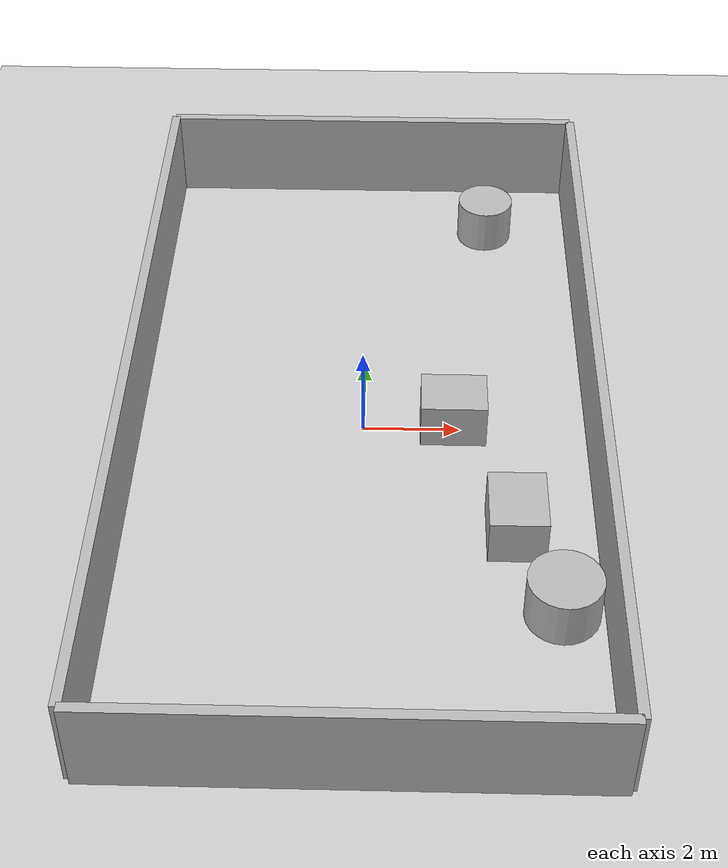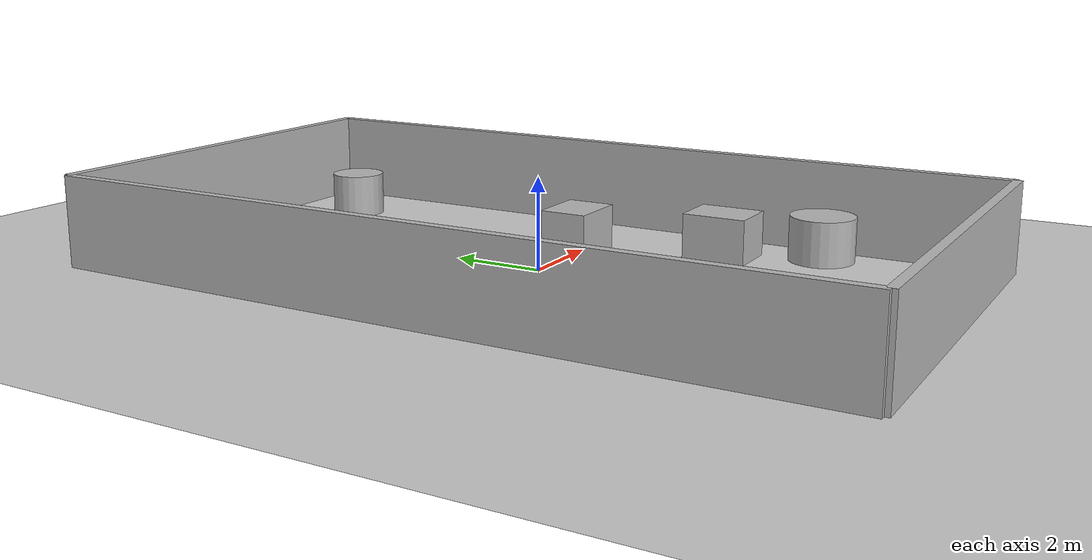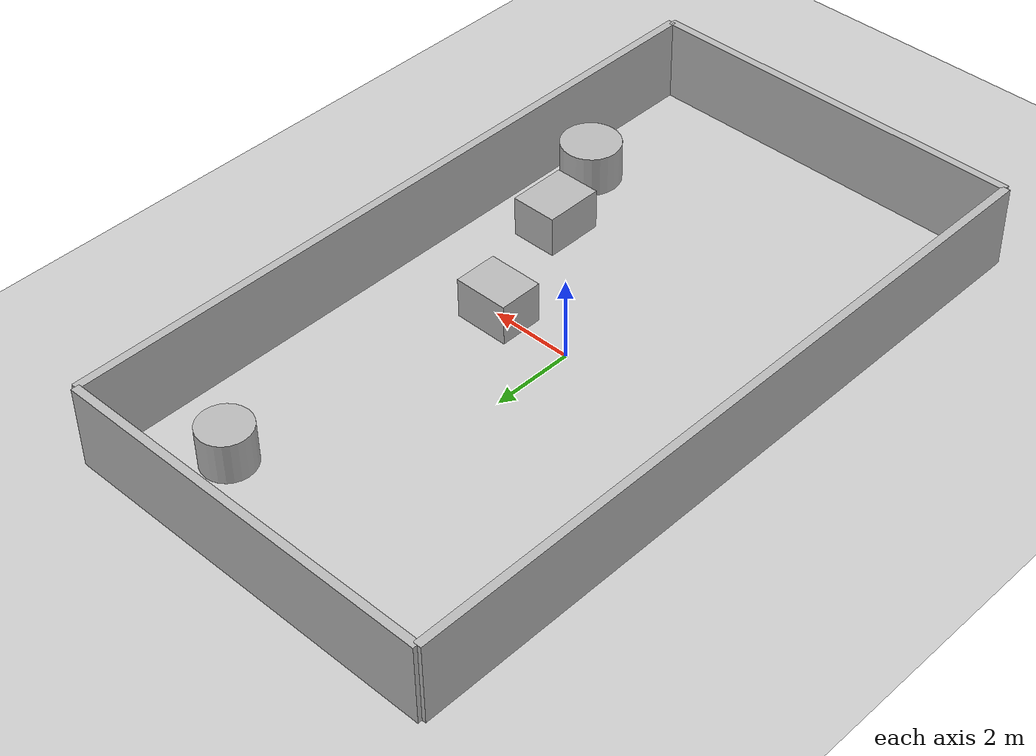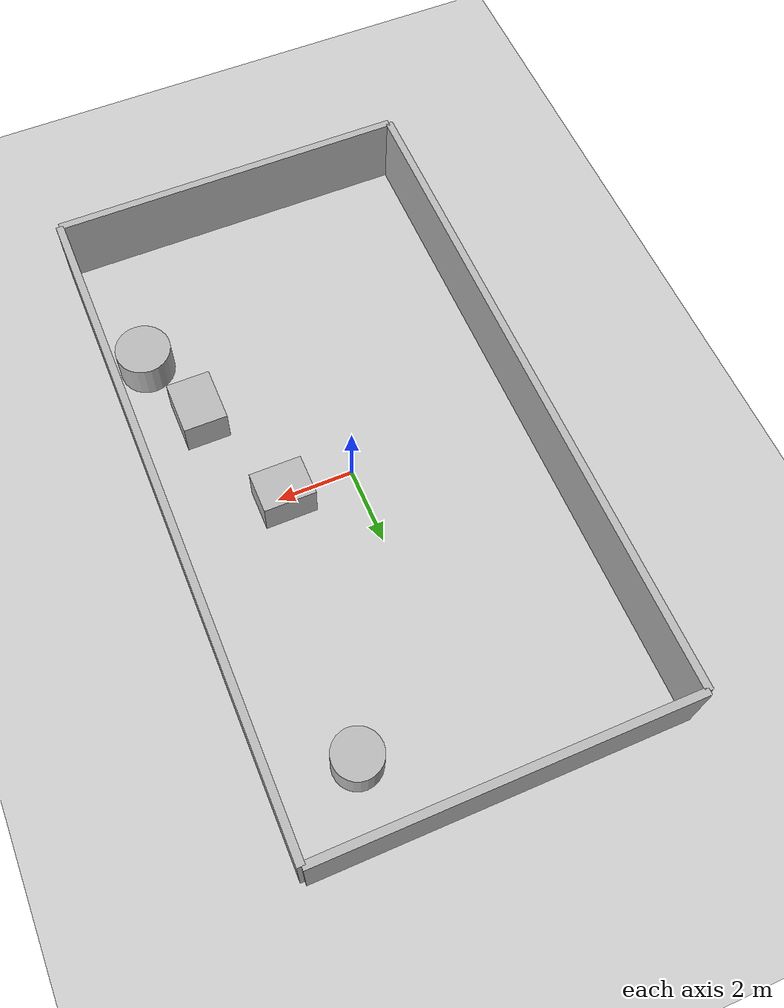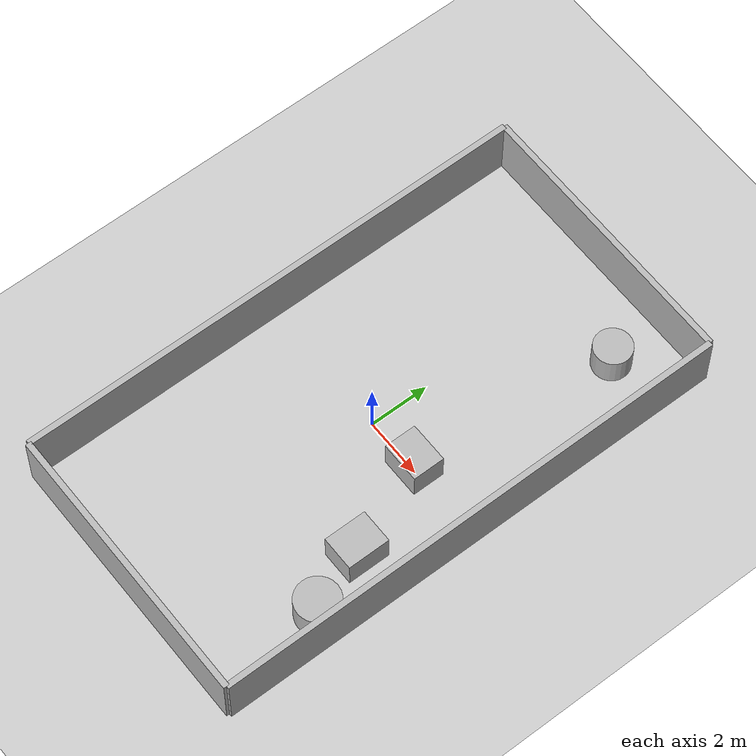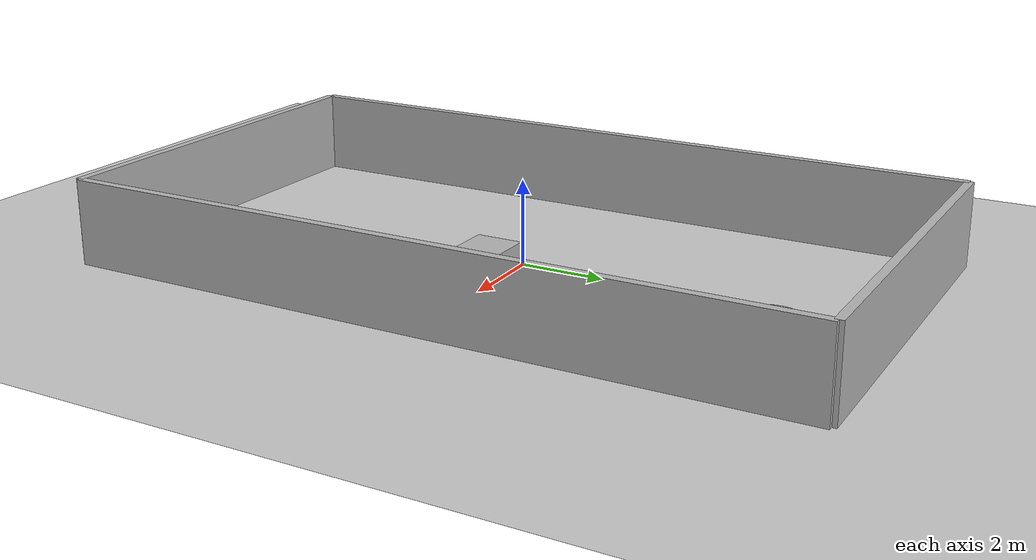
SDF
<?xml version="1.0"?>
<sdf version="1.6">
  <world name="env_18">

    <include><uri>model://ground_plane</uri></include>
    <include><uri>model://sun</uri></include>

    <!-- WALLS -->
    <model name="wall_north"><static>true</static><pose>0 8.719916655648564 1 0 0 0</pose>
      <link name="link"><collision name="collision">
        <geometry><box><size>9.44322695947651 0.2 2</size></box></geometry>
      </collision><visual name="visual">
        <geometry><box><size>9.44322695947651 0.2 2</size></box></geometry>
      </visual></link>
    </model>

    <model name="wall_south"><static>true</static><pose>0 -8.719916655648564 1 0 0 0</pose>
      <link name="link"><collision name="collision">
        <geometry><box><size>9.44322695947651 0.2 2</size></box></geometry>
      </collision><visual name="visual">
        <geometry><box><size>9.44322695947651 0.2 2</size></box></geometry>
      </visual></link>
    </model>

    <model name="wall_east"><static>true</static><pose>4.721613479738255 0 1 0 0 1.57</pose>
      <link name="link"><collision name="collision">
        <geometry><box><size>17.43983331129713 0.2 2</size></box></geometry>
      </collision><visual name="visual">
        <geometry><box><size>17.43983331129713 0.2 2</size></box></geometry>
      </visual></link>
    </model>

    <model name="wall_west"><static>true</static><pose>-4.721613479738255 0 1 0 0 1.57</pose>
      <link name="link"><collision name="collision">
        <geometry><box><size>17.43983331129713 0.2 2</size></box></geometry>
      </collision><visual name="visual">
        <geometry><box><size>17.43983331129713 0.2 2</size></box></geometry>
      </visual></link>
    </model>

    <!-- SENSOR -->

    <model name="lidar_sensor">
      <static>true</static>
      <pose>-1.3308948252940764 4.627393380003731 0.4 0 0 0</pose>
      <link name="link">
        <sensor name="lidar" type="ray">
          <pose>0 0 0 0 0 0</pose>
          <visualize>true</visualize>
          <always_on>true</always_on>
          <update_rate>10</update_rate>
          <ray>
            <scan><horizontal>
              <samples>720</samples>
              <resolution>1</resolution>
              <min_angle>-3.14159</min_angle>
              <max_angle>3.14159</max_angle>
            </horizontal></scan>
            <range><min>0.15</min><max>20.0</max><resolution>0.01</resolution></range>
          </ray>
          <plugin name="lidar_plugin" filename="liblidar_plugin.so"/>
        </sensor>
      </link>
    </model>

    <!-- OBSTACLES -->

    <model name="obstacle_0">
      <static>true</static>
      <pose>2.704135728042833 6.833827992915097 0.5 0 0 0</pose>
      <link name="link">
        <collision name="collision">
          <geometry><cylinder><radius>0.62</radius><length>1.0</length></cylinder></geometry>
        </collision>
        <visual name="visual">
          <geometry><cylinder><radius>0.62</radius><length>1.0</length></cylinder></geometry>
        </visual>
      </link>
    </model>

    <model name="obstacle_1">
      <static>true</static>
      <pose>3.813034342783914 -4.920109605859304 0.5 0 0 0</pose>
      <link name="link">
        <collision name="collision">
          <geometry><cylinder><radius>0.72</radius><length>1.0</length></cylinder></geometry>
        </collision>
        <visual name="visual">
          <geometry><cylinder><radius>0.72</radius><length>1.0</length></cylinder></geometry>
        </visual>
      </link>
    </model>

    <model name="obstacle_2">
      <static>true</static>
      <pose>1.8649291786445037 0.08113288924389295 0.5 0 0 0</pose>
      <link name="link">
        <collision name="collision">
          <geometry><box><size>1.35 1.07 1.0</size></box></geometry>
        </collision>
        <visual name="visual">
          <geometry><box><size>1.35 1.07 1.0</size></box></geometry>
        </visual>
      </link>
    </model>

    <model name="obstacle_3">
      <static>true</static>
      <pose>3.037651293878988 -2.9227295269714375 0.5 0 0 0</pose>
      <link name="link">
        <collision name="collision">
          <geometry><box><size>1.14 1.42 1.0</size></box></geometry>
        </collision>
        <visual name="visual">
          <geometry><box><size>1.14 1.42 1.0</size></box></geometry>
        </visual>
      </link>
    </model>

  </world>
</sdf>
